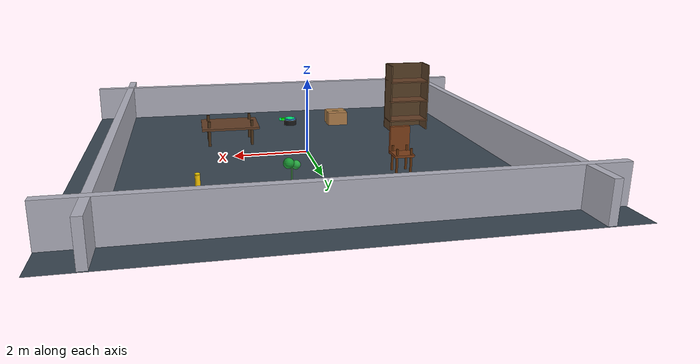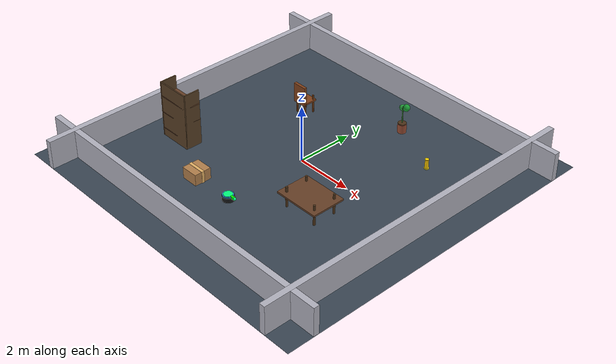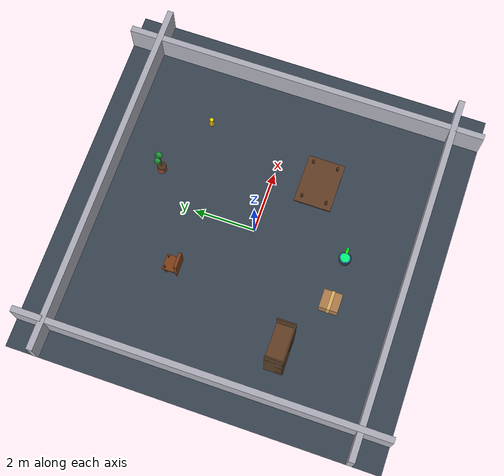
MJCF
# data/scene.xml
<mujoco model="pathfinder">
  <option gravity="0 0 -9.81" timestep="0.005"/>

  <asset>
    <texture name="floor" type="2d" builtin="checker" width="512" height="512" rgb1=".2 .25 .3" rgb2=".25 .3 .35"/>
    <material name="floor_mat" texture="floor" texrepeat="3 3" texuniform="true" reflectance=".1"/>

    <texture name="wood" type="2d" builtin="flat" width="512" height="512" rgb1=".4 .25 .15"/>
    <material name="wood_mat" texture="wood" reflectance=".1"/>

    <material name="target_mat" rgba="1 0.8 0 1" emission="0.3"/>
    <material name="wall_mat" rgba="0.7 0.7 0.75 1"/>
  </asset>

  <worldbody>
    <light diffuse="0.8 0.8 0.8" pos="0 0 4" dir="0 0 -1" castshadow="true"/>
    <light diffuse="0.5 0.5 0.5" pos="3 3 3" dir="-1 -1 -1"/>

    <geom name="floor" type="plane" size="6 6 0.1" material="floor_mat"/>

    <body name="wall_north" pos="0 5 0.5">
      <geom name="wall_n" type="box" size="6 0.1 0.5" material="wall_mat"/>
    </body>
    <body name="wall_south" pos="0 -5 0.5">
      <geom name="wall_s" type="box" size="6 0.1 0.5" material="wall_mat"/>
    </body>
    <body name="wall_east" pos="5 0 0.5">
      <geom name="wall_e" type="box" size="0.1 6 0.5" material="wall_mat"/>
    </body>
    <body name="wall_west" pos="-5 0 0.5">
      <geom name="wall_w" type="box" size="0.1 6 0.5" material="wall_mat"/>
    </body>

    <body name="robot" pos="0 -3 0.1">
      <joint name="robot_x" type="slide" axis="1 0 0" limited="false" damping="5"/>
      <joint name="robot_y" type="slide" axis="0 1 0" limited="false" damping="5"/>
      <joint name="robot_z" type="hinge" axis="0 0 1" limited="false" damping="2"/>

      <geom name="base" type="cylinder" size="0.2 0.08" rgba="0.1 0.1 0.1 1"/>
      <geom name="top" type="cylinder" size="0.18 0.02" pos="0 0 0.1" rgba="0.2 0.6 0.9 1"/>
      <geom name="sensor_ring" type="cylinder" size="0.15 0.01" pos="0 0 0.12" rgba="0 1 0.5 1"/>

      <body name="direction_indicator" pos="0.22 0 0.1">
        <geom name="arrow" type="box" size="0.08 0.04 0.04" rgba="0 1 0 1"/>
        <geom name="arrow_tip" type="sphere" size="0.05" pos="0.08 0 0" rgba="0 1 0.5 1"/>
      </body>

      <camera name="robot_camera" pos="0.25 0 0.25" euler="0 20 0" fovy="70"/>
    </body>

    <body name="target_cup" pos="3 2.5 0.08">
      <geom name="cup_base" type="cylinder" size="0.08 0.02" rgba="1 0.9 0.1 1"/>
      <geom name="cup_body" type="cylinder" size="0.06 0.15" pos="0 0 0.17" material="target_mat"/>
      <geom name="cup_rim" type="cylinder" size="0.065 0.01" pos="0 0 0.33" rgba="1 0.85 0 1"/>
      <light mode="targetbody" pos="0 0 0.4" diffuse="1 0.8 0" specular="0.5 0.4 0"/>
    </body>

    <body name="table" pos="2 -1.5 0">
      <geom name="table_top" type="box" size="0.8 0.6 0.03" pos="0 0 0.5" material="wood_mat"/>
      <geom name="leg1" type="cylinder" size="0.04 0.47" pos="0.6 0.4 0.23" rgba="0.3 0.2 0.1 1"/>
      <geom name="leg2" type="cylinder" size="0.04 0.47" pos="0.6 -0.4 0.23" rgba="0.3 0.2 0.1 1"/>
      <geom name="leg3" type="cylinder" size="0.04 0.47" pos="-0.6 0.4 0.23" rgba="0.3 0.2 0.1 1"/>
      <geom name="leg4" type="cylinder" size="0.04 0.47" pos="-0.6 -0.4 0.23" rgba="0.3 0.2 0.1 1"/>
    </body>

    <body name="chair" pos="-2 2 0">
      <geom name="seat" type="box" size="0.25 0.25 0.03" pos="0 0 0.45" rgba="0.5 0.25 0.1 1"/>
      <geom name="back" type="box" size="0.25 0.05 0.35" pos="0 -0.22 0.75" rgba="0.5 0.25 0.1 1"/>
      <geom name="chair_leg1" type="cylinder" size="0.03 0.42" pos="0.18 0.18 0.21" rgba="0.4 0.2 0.05 1"/>
      <geom name="chair_leg2" type="cylinder" size="0.03 0.42" pos="0.18 -0.18 0.21" rgba="0.4 0.2 0.05 1"/>
      <geom name="chair_leg3" type="cylinder" size="0.03 0.42" pos="-0.18 0.18 0.21" rgba="0.4 0.2 0.05 1"/>
      <geom name="chair_leg4" type="cylinder" size="0.03 0.42" pos="-0.18 -0.18 0.21" rgba="0.4 0.2 0.05 1"/>
    </body>

    <body name="bookshelf" pos="-3.5 -2 0">
      <geom name="shelf_back" type="box" size="0.6 0.02 1" pos="0 -0.28 1" rgba="0.35 0.25 0.15 1"/>
      <geom name="shelf1" type="box" size="0.6 0.3 0.02" pos="0 0 0.3" material="wood_mat"/>
      <geom name="shelf2" type="box" size="0.6 0.3 0.02" pos="0 0 0.9" material="wood_mat"/>
      <geom name="shelf3" type="box" size="0.6 0.3 0.02" pos="0 0 1.5" material="wood_mat"/>
      <geom name="shelf_side1" type="box" size="0.02 0.3 1" pos="0.58 0 1" rgba="0.35 0.25 0.15 1"/>
      <geom name="shelf_side2" type="box" size="0.02 0.3 1" pos="-0.58 0 1" rgba="0.35 0.25 0.15 1"/>
    </body>

    <body name="plant" pos="1 3.5 0">
      <geom name="pot" type="cylinder" size="0.15 0.2" pos="0 0 0.1" rgba="0.6 0.3 0.2 1"/>
      <geom name="soil" type="cylinder" size="0.14 0.02" pos="0 0 0.31" rgba="0.3 0.2 0.1 1"/>
      <geom name="plant_stem" type="cylinder" size="0.02 0.3" pos="0 0 0.65" rgba="0.2 0.5 0.2 1"/>
      <geom name="leaf1" type="sphere" size="0.12" pos="0.08 0.08 0.9" rgba="0.1 0.6 0.2 1"/>
      <geom name="leaf2" type="sphere" size="0.1" pos="-0.08 0.06 0.85" rgba="0.15 0.65 0.25 1"/>
    </body>

    <body name="box_obstacle" pos="-1.5 -3 0.2">
      <geom name="box" type="box" size="0.3 0.3 0.2" rgba="0.7 0.5 0.3 1"/>
      <geom name="box_tape" type="box" size="0.31 0.05 0.21" rgba="0.9 0.7 0.4 1"/>
    </body>
  </worldbody>

  <actuator>
    <motor name="move_x" joint="robot_x" gear="80" ctrllimited="true" ctrlrange="-1 1"/>
    <motor name="move_y" joint="robot_y" gear="80" ctrllimited="true" ctrlrange="-1 1"/>
    <motor name="rotate" joint="robot_z" gear="15" ctrllimited="true" ctrlrange="-1 1"/>
  </actuator>
</mujoco>
